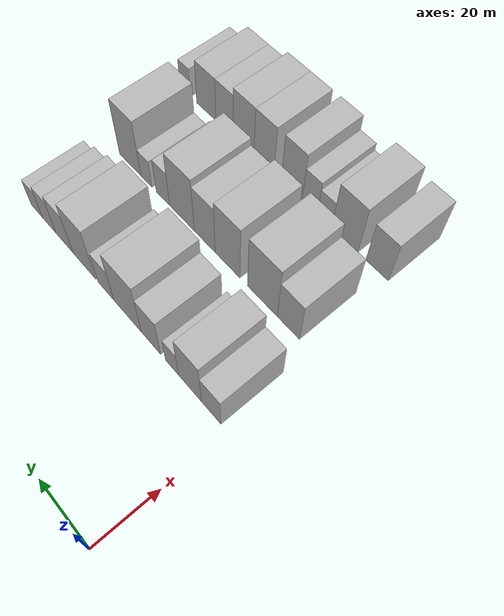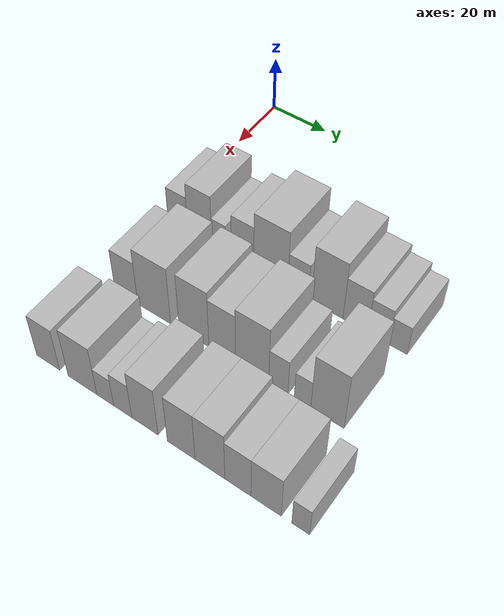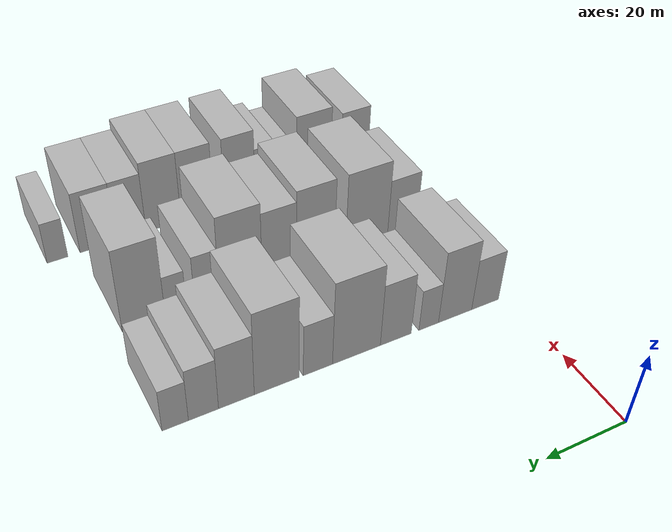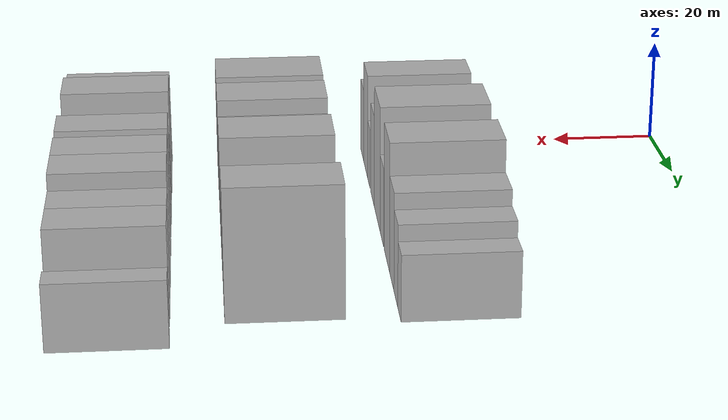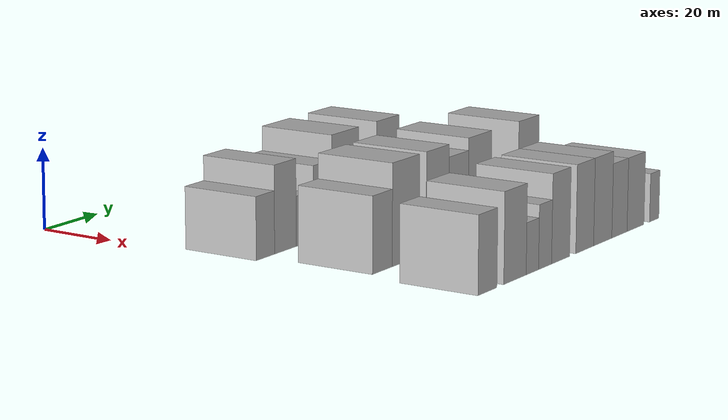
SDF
<sdf version="1.6">
 <world name="default">
  <model name="building_40">
   <static>1</static>
   <pose>50.0000 6.2769 0 0.000000 0.000000 0.000000</pose>
   <link name="link">
    <pose>0 0 7.50 0 0 0</pose>
    <collision name="collision"><geometry><box><size>20.0000 7.3298 15.0000</size></box></geometry></collision>
    <visual name="visual">
     <cast_shadows>0</cast_shadows>
     <geometry><box><size>20.0000 7.3298 15.0000</size></box></geometry>
     <material>
      <script>
       <uri>model://HANNAS_wall/materials/scripts</uri>
       <uri>model://HANNAS_wall/materials/textures</uri>
       <name>vrc/HANNAS_wall</name>
      </script>
     </material>
    </visual>
   </link>
  </model>
  <model name="building_41">
   <static>1</static>
   <pose>50.0000 14.3793 0 0.000000 0.000000 0.000000</pose>
   <link name="link">
    <pose>0 0 10.50 0 0 0</pose>
    <collision name="collision"><geometry><box><size>20.0000 8.8749 21.0000</size></box></geometry></collision>
    <visual name="visual">
     <cast_shadows>0</cast_shadows>
     <geometry><box><size>20.0000 8.8749 21.0000</size></box></geometry>
     <material>
      <script>
       <uri>model://HANNAS_wall/materials/scripts</uri>
       <uri>model://HANNAS_wall/materials/textures</uri>
       <name>vrc/HANNAS_wall</name>
      </script>
     </material>
    </visual>
   </link>
  </model>
  <model name="building_42">
   <static>1</static>
   <pose>50.0000 21.3698 0 0.000000 0.000000 0.000000</pose>
   <link name="link">
    <pose>0 0 6.00 0 0 0</pose>
    <collision name="collision"><geometry><box><size>20.0000 5.1060 12.0000</size></box></geometry></collision>
    <visual name="visual">
     <cast_shadows>0</cast_shadows>
     <geometry><box><size>20.0000 5.1060 12.0000</size></box></geometry>
     <material>
      <script>
       <uri>model://HANNAS_wall/materials/scripts</uri>
       <uri>model://HANNAS_wall/materials/textures</uri>
       <name>vrc/HANNAS_wall</name>
      </script>
     </material>
    </visual>
   </link>
  </model>
  <model name="building_43">
   <static>1</static>
   <pose>50.0000 29.8558 0 0.000000 0.000000 0.000000</pose>
   <link name="link">
    <pose>0 0 9.00 0 0 0</pose>
    <collision name="collision"><geometry><box><size>20.0000 7.8661 18.0000</size></box></geometry></collision>
    <visual name="visual">
     <cast_shadows>0</cast_shadows>
     <geometry><box><size>20.0000 7.8661 18.0000</size></box></geometry>
     <material>
      <script>
       <uri>model://HANNAS_wall/materials/scripts</uri>
       <uri>model://HANNAS_wall/materials/textures</uri>
       <name>vrc/HANNAS_wall</name>
      </script>
     </material>
    </visual>
   </link>
  </model>
  <model name="building_44">
   <static>1</static>
   <pose>50.0000 39.6937 0 0.000000 0.000000 0.000000</pose>
   <link name="link">
    <pose>0 0 12.00 0 0 0</pose>
    <collision name="collision"><geometry><box><size>20.0000 11.8096 24.0000</size></box></geometry></collision>
    <visual name="visual">
     <cast_shadows>0</cast_shadows>
     <geometry><box><size>20.0000 11.8096 24.0000</size></box></geometry>
     <material>
      <script>
       <uri>model://HANNAS_wall/materials/scripts</uri>
       <uri>model://HANNAS_wall/materials/textures</uri>
       <name>vrc/HANNAS_wall</name>
      </script>
     </material>
    </visual>
   </link>
  </model>
  <model name="building_45">
   <static>1</static>
   <pose>50.0000 49.0959 0 0.000000 0.000000 0.000000</pose>
   <link name="link">
    <pose>0 0 7.50 0 0 0</pose>
    <collision name="collision"><geometry><box><size>20.0000 6.9949 15.0000</size></box></geometry></collision>
    <visual name="visual">
     <cast_shadows>0</cast_shadows>
     <geometry><box><size>20.0000 6.9949 15.0000</size></box></geometry>
     <material>
      <script>
       <uri>model://HANNAS_wall/materials/scripts</uri>
       <uri>model://HANNAS_wall/materials/textures</uri>
       <name>vrc/HANNAS_wall</name>
      </script>
     </material>
    </visual>
   </link>
  </model>
  <model name="building_46">
   <static>1</static>
   <pose>50.0000 58.7831 0 0.000000 0.000000 0.000000</pose>
   <link name="link">
    <pose>0 0 12.00 0 0 0</pose>
    <collision name="collision"><geometry><box><size>20.0000 10.3796 24.0000</size></box></geometry></collision>
    <visual name="visual">
     <cast_shadows>0</cast_shadows>
     <geometry><box><size>20.0000 10.3796 24.0000</size></box></geometry>
     <material>
      <script>
       <uri>model://HANNAS_wall/materials/scripts</uri>
       <uri>model://HANNAS_wall/materials/textures</uri>
       <name>vrc/HANNAS_wall</name>
      </script>
     </material>
    </visual>
   </link>
  </model>
  <model name="building_47">
   <static>1</static>
   <pose>50.0000 67.9935 0 0.000000 0.000000 0.000000</pose>
   <link name="link">
    <pose>0 0 9.00 0 0 0</pose>
    <collision name="collision"><geometry><box><size>20.0000 8.0411 18.0000</size></box></geometry></collision>
    <visual name="visual">
     <cast_shadows>0</cast_shadows>
     <geometry><box><size>20.0000 8.0411 18.0000</size></box></geometry>
     <material>
      <script>
       <uri>model://HANNAS_wall/materials/scripts</uri>
       <uri>model://HANNAS_wall/materials/textures</uri>
       <name>vrc/HANNAS_wall</name>
      </script>
     </material>
    </visual>
   </link>
  </model>
  <model name="building_48">
   <static>1</static>
   <pose>50.0000 75.3206 0 0.000000 0.000000 0.000000</pose>
   <link name="link">
    <pose>0 0 7.50 0 0 0</pose>
    <collision name="collision"><geometry><box><size>20.0000 6.6130 15.0000</size></box></geometry></collision>
    <visual name="visual">
     <cast_shadows>0</cast_shadows>
     <geometry><box><size>20.0000 6.6130 15.0000</size></box></geometry>
     <material>
      <script>
       <uri>model://HANNAS_wall/materials/scripts</uri>
       <uri>model://HANNAS_wall/materials/textures</uri>
       <name>vrc/HANNAS_wall</name>
      </script>
     </material>
    </visual>
   </link>
  </model>
  <model name="building_49">
   <static>1</static>
   <pose>50.0000 81.4711 0 0.000000 0.000000 0.000000</pose>
   <link name="link">
    <pose>0 0 6.00 0 0 0</pose>
    <collision name="collision"><geometry><box><size>20.0000 5.6880 12.0000</size></box></geometry></collision>
    <visual name="visual">
     <cast_shadows>0</cast_shadows>
     <geometry><box><size>20.0000 5.6880 12.0000</size></box></geometry>
     <material>
      <script>
       <uri>model://HANNAS_wall/materials/scripts</uri>
       <uri>model://HANNAS_wall/materials/textures</uri>
       <name>vrc/HANNAS_wall</name>
      </script>
     </material>
    </visual>
   </link>
  </model>
  <model name="building_114">
   <static>1</static>
   <pose>79.0000 10.5758 0 0.000000 0.000000 0.000000</pose>
   <link name="link">
    <pose>0 0 9.00 0 0 0</pose>
    <collision name="collision"><geometry><box><size>20.0000 8.2987 18.0000</size></box></geometry></collision>
    <visual name="visual">
     <cast_shadows>0</cast_shadows>
     <geometry><box><size>20.0000 8.2987 18.0000</size></box></geometry>
     <material>
      <script>
       <uri>model://HANNAS_wall/materials/scripts</uri>
       <uri>model://HANNAS_wall/materials/textures</uri>
       <name>vrc/HANNAS_wall</name>
      </script>
     </material>
    </visual>
   </link>
  </model>
  <model name="building_115">
   <static>1</static>
   <pose>79.0000 20.5385 0 0.000000 0.000000 0.000000</pose>
   <link name="link">
    <pose>0 0 12.00 0 0 0</pose>
    <collision name="collision"><geometry><box><size>20.0000 11.6267 24.0000</size></box></geometry></collision>
    <visual name="visual">
     <cast_shadows>0</cast_shadows>
     <geometry><box><size>20.0000 11.6267 24.0000</size></box></geometry>
     <material>
      <script>
       <uri>model://HANNAS_wall/materials/scripts</uri>
       <uri>model://HANNAS_wall/materials/textures</uri>
       <name>vrc/HANNAS_wall</name>
      </script>
     </material>
    </visual>
   </link>
  </model>
  <model name="building_116">
   <static>1</static>
   <pose>79.0000 34.4201 0 0.000000 0.000000 0.000000</pose>
   <link name="link">
    <pose>0 0 12.00 0 0 0</pose>
    <collision name="collision"><geometry><box><size>20.0000 10.1365 24.0000</size></box></geometry></collision>
    <visual name="visual">
     <cast_shadows>0</cast_shadows>
     <geometry><box><size>20.0000 10.1365 24.0000</size></box></geometry>
     <material>
      <script>
       <uri>model://HANNAS_wall/materials/scripts</uri>
       <uri>model://HANNAS_wall/materials/textures</uri>
       <name>vrc/HANNAS_wall</name>
      </script>
     </material>
    </visual>
   </link>
  </model>
  <model name="building_117">
   <static>1</static>
   <pose>79.0000 43.9168 0 0.000000 0.000000 0.000000</pose>
   <link name="link">
    <pose>0 0 10.50 0 0 0</pose>
    <collision name="collision"><geometry><box><size>20.0000 8.8569 21.0000</size></box></geometry></collision>
    <visual name="visual">
     <cast_shadows>0</cast_shadows>
     <geometry><box><size>20.0000 8.8569 21.0000</size></box></geometry>
     <material>
      <script>
       <uri>model://HANNAS_wall/materials/scripts</uri>
       <uri>model://HANNAS_wall/materials/textures</uri>
       <name>vrc/HANNAS_wall</name>
      </script>
     </material>
    </visual>
   </link>
  </model>
  <model name="building_118">
   <static>1</static>
   <pose>79.0000 53.7370 0 0.000000 0.000000 0.000000</pose>
   <link name="link">
    <pose>0 0 12.00 0 0 0</pose>
    <collision name="collision"><geometry><box><size>20.0000 10.7835 24.0000</size></box></geometry></collision>
    <visual name="visual">
     <cast_shadows>0</cast_shadows>
     <geometry><box><size>20.0000 10.7835 24.0000</size></box></geometry>
     <material>
      <script>
       <uri>model://HANNAS_wall/materials/scripts</uri>
       <uri>model://HANNAS_wall/materials/textures</uri>
       <name>vrc/HANNAS_wall</name>
      </script>
     </material>
    </visual>
   </link>
  </model>
  <model name="building_119">
   <static>1</static>
   <pose>79.0000 62.1556 0 0.000000 0.000000 0.000000</pose>
   <link name="link">
    <pose>0 0 7.50 0 0 0</pose>
    <collision name="collision"><geometry><box><size>20.0000 6.0535 15.0000</size></box></geometry></collision>
    <visual name="visual">
     <cast_shadows>0</cast_shadows>
     <geometry><box><size>20.0000 6.0535 15.0000</size></box></geometry>
     <material>
      <script>
       <uri>model://HANNAS_wall/materials/scripts</uri>
       <uri>model://HANNAS_wall/materials/textures</uri>
       <name>vrc/HANNAS_wall</name>
      </script>
     </material>
    </visual>
   </link>
  </model>
  <model name="building_120">
   <static>1</static>
   <pose>79.0000 69.7512 0 0.000000 0.000000 0.000000</pose>
   <link name="link">
    <pose>0 0 6.00 0 0 0</pose>
    <collision name="collision"><geometry><box><size>20.0000 5.1376 12.0000</size></box></geometry></collision>
    <visual name="visual">
     <cast_shadows>0</cast_shadows>
     <geometry><box><size>20.0000 5.1376 12.0000</size></box></geometry>
     <material>
      <script>
       <uri>model://HANNAS_wall/materials/scripts</uri>
       <uri>model://HANNAS_wall/materials/textures</uri>
       <name>vrc/HANNAS_wall</name>
      </script>
     </material>
    </visual>
   </link>
  </model>
  <model name="building_121">
   <static>1</static>
   <pose>79.0000 77.3789 0 0.000000 0.000000 0.000000</pose>
   <link name="link">
    <pose>0 0 12.00 0 0 0</pose>
    <collision name="collision"><geometry><box><size>20.0000 10.1180 24.0000</size></box></geometry></collision>
    <visual name="visual">
     <cast_shadows>0</cast_shadows>
     <geometry><box><size>20.0000 10.1180 24.0000</size></box></geometry>
     <material>
      <script>
       <uri>model://HANNAS_wall/materials/scripts</uri>
       <uri>model://HANNAS_wall/materials/textures</uri>
       <name>vrc/HANNAS_wall</name>
      </script>
     </material>
    </visual>
   </link>
  </model>
  <model name="building_186">
   <static>1</static>
   <pose>108.0000 7.5451 0 0.000000 0.000000 0.000000</pose>
   <link name="link">
    <pose>0 0 9.00 0 0 0</pose>
    <collision name="collision"><geometry><box><size>20.0000 8.2315 18.0000</size></box></geometry></collision>
    <visual name="visual">
     <cast_shadows>0</cast_shadows>
     <geometry><box><size>20.0000 8.2315 18.0000</size></box></geometry>
     <material>
      <script>
       <uri>model://HANNAS_wall/materials/scripts</uri>
       <uri>model://HANNAS_wall/materials/textures</uri>
       <name>vrc/HANNAS_wall</name>
      </script>
     </material>
    </visual>
   </link>
  </model>
  <model name="building_187">
   <static>1</static>
   <pose>108.0000 19.6900 0 0.000000 0.000000 0.000000</pose>
   <link name="link">
    <pose>0 0 10.50 0 0 0</pose>
    <collision name="collision"><geometry><box><size>20.0000 10.0584 21.0000</size></box></geometry></collision>
    <visual name="visual">
     <cast_shadows>0</cast_shadows>
     <geometry><box><size>20.0000 10.0584 21.0000</size></box></geometry>
     <material>
      <script>
       <uri>model://HANNAS_wall/materials/scripts</uri>
       <uri>model://HANNAS_wall/materials/textures</uri>
       <name>vrc/HANNAS_wall</name>
      </script>
     </material>
    </visual>
   </link>
  </model>
  <model name="building_188">
   <static>1</static>
   <pose>108.0000 27.5665 0 0.000000 0.000000 0.000000</pose>
   <link name="link">
    <pose>0 0 6.00 0 0 0</pose>
    <collision name="collision"><geometry><box><size>20.0000 5.6945 12.0000</size></box></geometry></collision>
    <visual name="visual">
     <cast_shadows>0</cast_shadows>
     <geometry><box><size>20.0000 5.6945 12.0000</size></box></geometry>
     <material>
      <script>
       <uri>model://HANNAS_wall/materials/scripts</uri>
       <uri>model://HANNAS_wall/materials/textures</uri>
       <name>vrc/HANNAS_wall</name>
      </script>
     </material>
    </visual>
   </link>
  </model>
  <model name="building_189">
   <static>1</static>
   <pose>108.0000 33.4491 0 0.000000 0.000000 0.000000</pose>
   <link name="link">
    <pose>0 0 7.50 0 0 0</pose>
    <collision name="collision"><geometry><box><size>20.0000 6.0708 15.0000</size></box></geometry></collision>
    <visual name="visual">
     <cast_shadows>0</cast_shadows>
     <geometry><box><size>20.0000 6.0708 15.0000</size></box></geometry>
     <material>
      <script>
       <uri>model://HANNAS_wall/materials/scripts</uri>
       <uri>model://HANNAS_wall/materials/textures</uri>
       <name>vrc/HANNAS_wall</name>
      </script>
     </material>
    </visual>
   </link>
  </model>
  <model name="building_190">
   <static>1</static>
   <pose>108.0000 40.7851 0 0.000000 0.000000 0.000000</pose>
   <link name="link">
    <pose>0 0 10.50 0 0 0</pose>
    <collision name="collision"><geometry><box><size>20.0000 8.6012 21.0000</size></box></geometry></collision>
    <visual name="visual">
     <cast_shadows>0</cast_shadows>
     <geometry><box><size>20.0000 8.6012 21.0000</size></box></geometry>
     <material>
      <script>
       <uri>model://HANNAS_wall/materials/scripts</uri>
       <uri>model://HANNAS_wall/materials/textures</uri>
       <name>vrc/HANNAS_wall</name>
      </script>
     </material>
    </visual>
   </link>
  </model>
  <model name="building_191">
   <static>1</static>
   <pose>108.0000 52.4677 0 0.000000 0.000000 0.000000</pose>
   <link name="link">
    <pose>0 0 10.50 0 0 0</pose>
    <collision name="collision"><geometry><box><size>20.0000 8.7640 21.0000</size></box></geometry></collision>
    <visual name="visual">
     <cast_shadows>0</cast_shadows>
     <geometry><box><size>20.0000 8.7640 21.0000</size></box></geometry>
     <material>
      <script>
       <uri>model://HANNAS_wall/materials/scripts</uri>
       <uri>model://HANNAS_wall/materials/textures</uri>
       <name>vrc/HANNAS_wall</name>
      </script>
     </material>
    </visual>
   </link>
  </model>
  <model name="building_192">
   <static>1</static>
   <pose>108.0000 61.4539 0 0.000000 0.000000 0.000000</pose>
   <link name="link">
    <pose>0 0 10.50 0 0 0</pose>
    <collision name="collision"><geometry><box><size>20.0000 9.2084 21.0000</size></box></geometry></collision>
    <visual name="visual">
     <cast_shadows>0</cast_shadows>
     <geometry><box><size>20.0000 9.2084 21.0000</size></box></geometry>
     <material>
      <script>
       <uri>model://HANNAS_wall/materials/scripts</uri>
       <uri>model://HANNAS_wall/materials/textures</uri>
       <name>vrc/HANNAS_wall</name>
      </script>
     </material>
    </visual>
   </link>
  </model>
  <model name="building_193">
   <static>1</static>
   <pose>108.0000 69.9841 0 0.000000 0.000000 0.000000</pose>
   <link name="link">
    <pose>0 0 9.00 0 0 0</pose>
    <collision name="collision"><geometry><box><size>20.0000 7.8519 18.0000</size></box></geometry></collision>
    <visual name="visual">
     <cast_shadows>0</cast_shadows>
     <geometry><box><size>20.0000 7.8519 18.0000</size></box></geometry>
     <material>
      <script>
       <uri>model://HANNAS_wall/materials/scripts</uri>
       <uri>model://HANNAS_wall/materials/textures</uri>
       <name>vrc/HANNAS_wall</name>
      </script>
     </material>
    </visual>
   </link>
  </model>
  <model name="building_194">
   <static>1</static>
   <pose>108.0000 78.3804 0 0.000000 0.000000 0.000000</pose>
   <link name="link">
    <pose>0 0 9.00 0 0 0</pose>
    <collision name="collision"><geometry><box><size>20.0000 8.9408 18.0000</size></box></geometry></collision>
    <visual name="visual">
     <cast_shadows>0</cast_shadows>
     <geometry><box><size>20.0000 8.9408 18.0000</size></box></geometry>
     <material>
      <script>
       <uri>model://HANNAS_wall/materials/scripts</uri>
       <uri>model://HANNAS_wall/materials/textures</uri>
       <name>vrc/HANNAS_wall</name>
      </script>
     </material>
    </visual>
   </link>
  </model>
  <model name="building_195">
   <static>1</static>
   <pose>108.0000 88.3938 0 0.000000 0.000000 0.000000</pose>
   <link name="link">
    <pose>0 0 6.00 0 0 0</pose>
    <collision name="collision"><geometry><box><size>20.0000 5.0858 12.0000</size></box></geometry></collision>
    <visual name="visual">
     <cast_shadows>0</cast_shadows>
     <geometry><box><size>20.0000 5.0858 12.0000</size></box></geometry>
     <material>
      <script>
       <uri>model://HANNAS_wall/materials/scripts</uri>
       <uri>model://HANNAS_wall/materials/textures</uri>
       <name>vrc/HANNAS_wall</name>
      </script>
     </material>
    </visual>
   </link>
  </model>
 </world>
</sdf>
